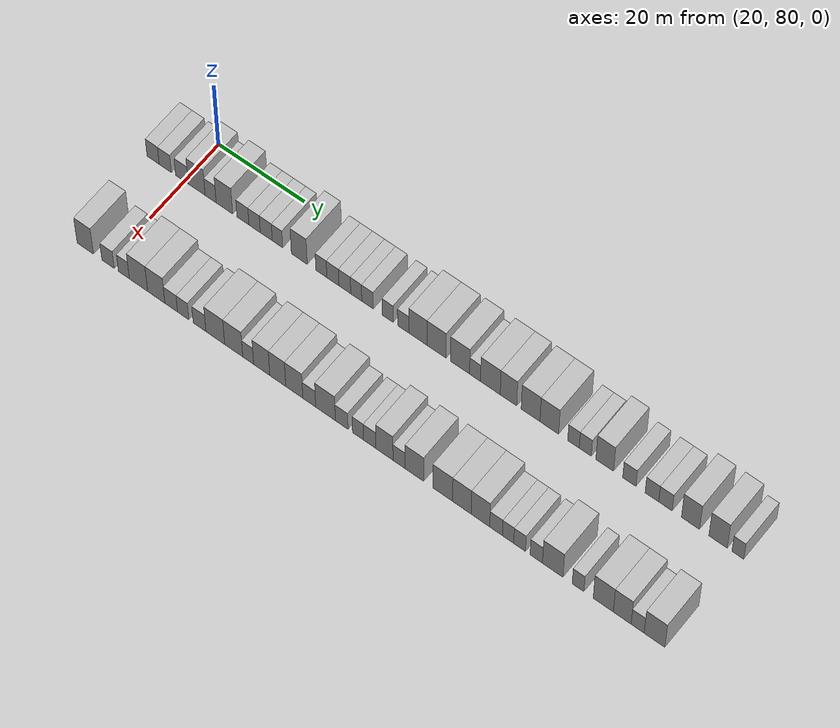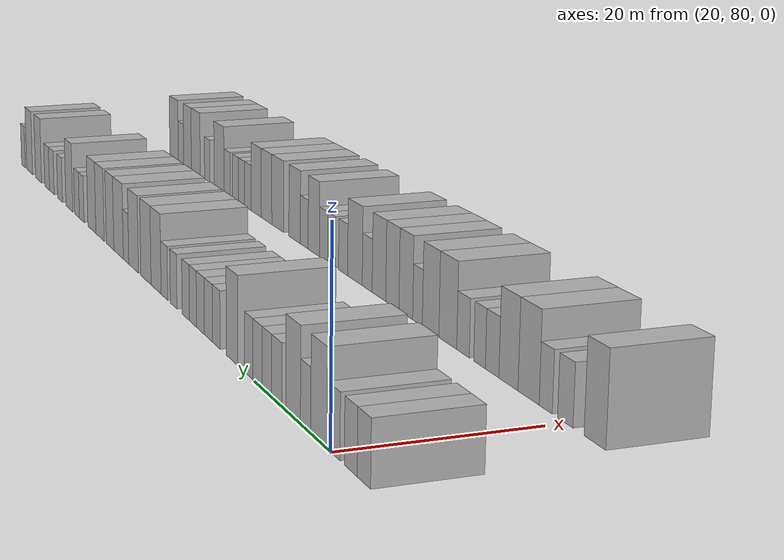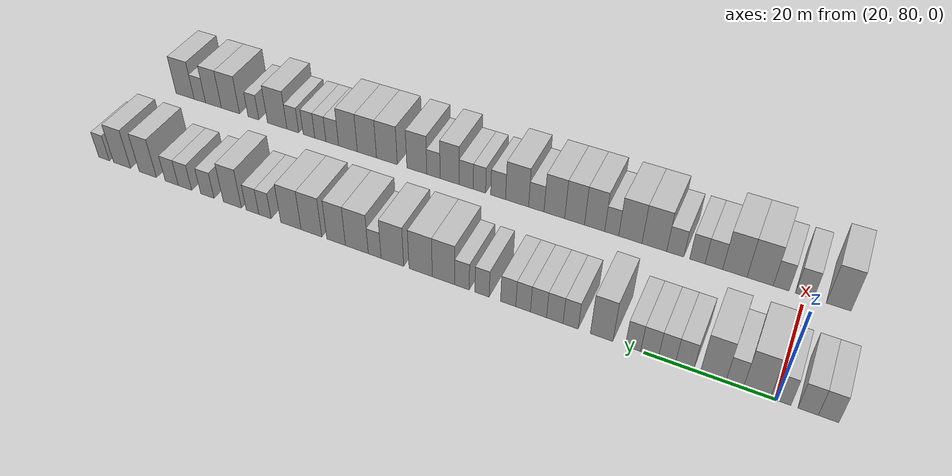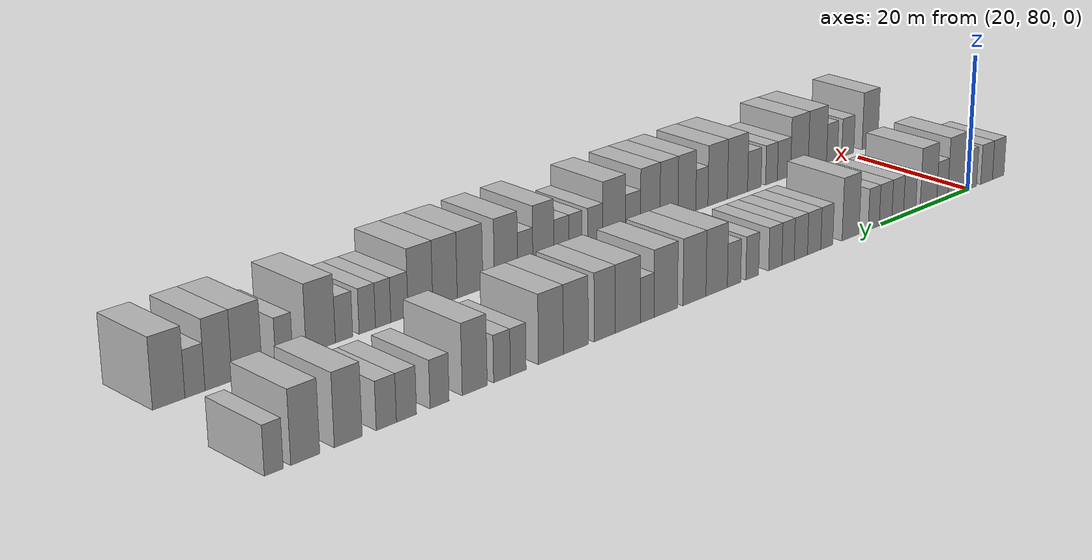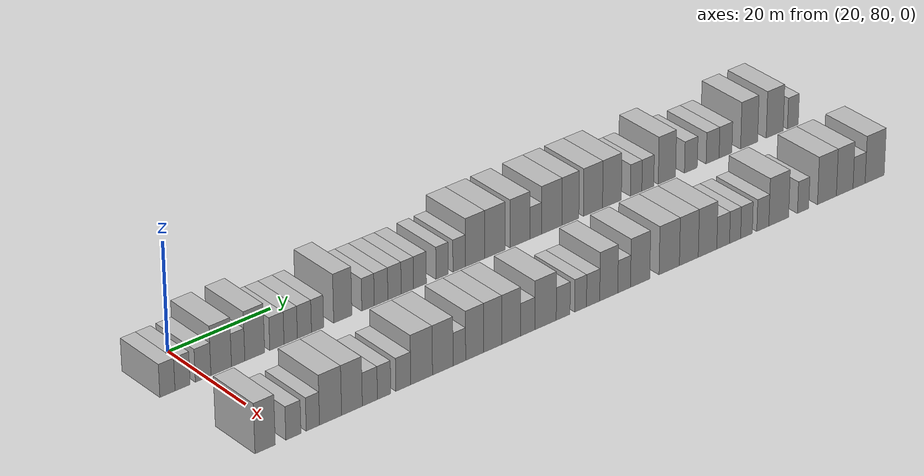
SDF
<sdf version="1.6">
 <world name="default">
  <model name="building_71">
   <static>1</static>
   <pose>25.0000 72.5571 0 0.000000 0.000000 0.000000</pose>
   <link name="link">
    <pose>0 0 3.00 0 0 0</pose>
    <collision name="collision"><geometry><box><size>10.0000 2.8815 6.0000</size></box></geometry></collision>
    <visual name="visual">
     <cast_shadows>0</cast_shadows>
     <geometry><box><size>10.0000 2.8815 6.0000</size></box></geometry>
     <material>
      <script>
       <uri>model://HANNAS_wall/materials/scripts</uri>
       <uri>model://HANNAS_wall/materials/textures</uri>
       <name>vrc/HANNAS_wall</name>
      </script>
     </material>
    </visual>
   </link>
  </model>
  <model name="building_72">
   <static>1</static>
   <pose>25.0000 75.4429 0 0.000000 0.000000 0.000000</pose>
   <link name="link">
    <pose>0 0 3.00 0 0 0</pose>
    <collision name="collision"><geometry><box><size>10.0000 2.8902 6.0000</size></box></geometry></collision>
    <visual name="visual">
     <cast_shadows>0</cast_shadows>
     <geometry><box><size>10.0000 2.8902 6.0000</size></box></geometry>
     <material>
      <script>
       <uri>model://HANNAS_wall/materials/scripts</uri>
       <uri>model://HANNAS_wall/materials/textures</uri>
       <name>vrc/HANNAS_wall</name>
      </script>
     </material>
    </visual>
   </link>
  </model>
  <model name="building_73">
   <static>1</static>
   <pose>25.0000 79.3870 0 0.000000 0.000000 0.000000</pose>
   <link name="link">
    <pose>0 0 3.00 0 0 0</pose>
    <collision name="collision"><geometry><box><size>10.0000 2.9979 6.0000</size></box></geometry></collision>
    <visual name="visual">
     <cast_shadows>0</cast_shadows>
     <geometry><box><size>10.0000 2.9979 6.0000</size></box></geometry>
     <material>
      <script>
       <uri>model://HANNAS_wall/materials/scripts</uri>
       <uri>model://HANNAS_wall/materials/textures</uri>
       <name>vrc/HANNAS_wall</name>
      </script>
     </material>
    </visual>
   </link>
  </model>
  <model name="building_74">
   <static>1</static>
   <pose>25.0000 82.8758 0 0.000000 0.000000 0.000000</pose>
   <link name="link">
    <pose>0 0 4.50 0 0 0</pose>
    <collision name="collision"><geometry><box><size>10.0000 3.9798 9.0000</size></box></geometry></collision>
    <visual name="visual">
     <cast_shadows>0</cast_shadows>
     <geometry><box><size>10.0000 3.9798 9.0000</size></box></geometry>
     <material>
      <script>
       <uri>model://HANNAS_wall/materials/scripts</uri>
       <uri>model://HANNAS_wall/materials/textures</uri>
       <name>vrc/HANNAS_wall</name>
      </script>
     </material>
    </visual>
   </link>
  </model>
  <model name="building_75">
   <static>1</static>
   <pose>25.0000 86.1641 0 0.000000 0.000000 0.000000</pose>
   <link name="link">
    <pose>0 0 3.00 0 0 0</pose>
    <collision name="collision"><geometry><box><size>10.0000 2.5969 6.0000</size></box></geometry></collision>
    <visual name="visual">
     <cast_shadows>0</cast_shadows>
     <geometry><box><size>10.0000 2.5969 6.0000</size></box></geometry>
     <material>
      <script>
       <uri>model://HANNAS_wall/materials/scripts</uri>
       <uri>model://HANNAS_wall/materials/textures</uri>
       <name>vrc/HANNAS_wall</name>
      </script>
     </material>
    </visual>
   </link>
  </model>
  <model name="building_76">
   <static>1</static>
   <pose>25.0000 89.3958 0 0.000000 0.000000 0.000000</pose>
   <link name="link">
    <pose>0 0 4.50 0 0 0</pose>
    <collision name="collision"><geometry><box><size>10.0000 3.8663 9.0000</size></box></geometry></collision>
    <visual name="visual">
     <cast_shadows>0</cast_shadows>
     <geometry><box><size>10.0000 3.8663 9.0000</size></box></geometry>
     <material>
      <script>
       <uri>model://HANNAS_wall/materials/scripts</uri>
       <uri>model://HANNAS_wall/materials/textures</uri>
       <name>vrc/HANNAS_wall</name>
      </script>
     </material>
    </visual>
   </link>
  </model>
  <model name="building_77">
   <static>1</static>
   <pose>25.0000 93.7324 0 0.000000 0.000000 0.000000</pose>
   <link name="link">
    <pose>0 0 3.00 0 0 0</pose>
    <collision name="collision"><geometry><box><size>10.0000 2.8068 6.0000</size></box></geometry></collision>
    <visual name="visual">
     <cast_shadows>0</cast_shadows>
     <geometry><box><size>10.0000 2.8068 6.0000</size></box></geometry>
     <material>
      <script>
       <uri>model://HANNAS_wall/materials/scripts</uri>
       <uri>model://HANNAS_wall/materials/textures</uri>
       <name>vrc/HANNAS_wall</name>
      </script>
     </material>
    </visual>
   </link>
  </model>
  <model name="building_78">
   <static>1</static>
   <pose>25.0000 96.4545 0 0.000000 0.000000 0.000000</pose>
   <link name="link">
    <pose>0 0 3.00 0 0 0</pose>
    <collision name="collision"><geometry><box><size>10.0000 2.6375 6.0000</size></box></geometry></collision>
    <visual name="visual">
     <cast_shadows>0</cast_shadows>
     <geometry><box><size>10.0000 2.6375 6.0000</size></box></geometry>
     <material>
      <script>
       <uri>model://HANNAS_wall/materials/scripts</uri>
       <uri>model://HANNAS_wall/materials/textures</uri>
       <name>vrc/HANNAS_wall</name>
      </script>
     </material>
    </visual>
   </link>
  </model>
  <model name="building_79">
   <static>1</static>
   <pose>25.0000 99.1739 0 0.000000 0.000000 0.000000</pose>
   <link name="link">
    <pose>0 0 3.00 0 0 0</pose>
    <collision name="collision"><geometry><box><size>10.0000 2.8012 6.0000</size></box></geometry></collision>
    <visual name="visual">
     <cast_shadows>0</cast_shadows>
     <geometry><box><size>10.0000 2.8012 6.0000</size></box></geometry>
     <material>
      <script>
       <uri>model://HANNAS_wall/materials/scripts</uri>
       <uri>model://HANNAS_wall/materials/textures</uri>
       <name>vrc/HANNAS_wall</name>
      </script>
     </material>
    </visual>
   </link>
  </model>
  <model name="building_80">
   <static>1</static>
   <pose>25.0000 101.7898 0 0.000000 0.000000 0.000000</pose>
   <link name="link">
    <pose>0 0 3.00 0 0 0</pose>
    <collision name="collision"><geometry><box><size>10.0000 2.4306 6.0000</size></box></geometry></collision>
    <visual name="visual">
     <cast_shadows>0</cast_shadows>
     <geometry><box><size>10.0000 2.4306 6.0000</size></box></geometry>
     <material>
      <script>
       <uri>model://HANNAS_wall/materials/scripts</uri>
       <uri>model://HANNAS_wall/materials/textures</uri>
       <name>vrc/HANNAS_wall</name>
      </script>
     </material>
    </visual>
   </link>
  </model>
  <model name="building_81">
   <static>1</static>
   <pose>25.0000 106.8358 0 0.000000 0.000000 0.000000</pose>
   <link name="link">
    <pose>0 0 4.50 0 0 0</pose>
    <collision name="collision"><geometry><box><size>10.0000 3.6615 9.0000</size></box></geometry></collision>
    <visual name="visual">
     <cast_shadows>0</cast_shadows>
     <geometry><box><size>10.0000 3.6615 9.0000</size></box></geometry>
     <material>
      <script>
       <uri>model://HANNAS_wall/materials/scripts</uri>
       <uri>model://HANNAS_wall/materials/textures</uri>
       <name>vrc/HANNAS_wall</name>
      </script>
     </material>
    </visual>
   </link>
  </model>
  <model name="building_82">
   <static>1</static>
   <pose>25.0000 111.9291 0 0.000000 0.000000 0.000000</pose>
   <link name="link">
    <pose>0 0 3.00 0 0 0</pose>
    <collision name="collision"><geometry><box><size>10.0000 2.5251 6.0000</size></box></geometry></collision>
    <visual name="visual">
     <cast_shadows>0</cast_shadows>
     <geometry><box><size>10.0000 2.5251 6.0000</size></box></geometry>
     <material>
      <script>
       <uri>model://HANNAS_wall/materials/scripts</uri>
       <uri>model://HANNAS_wall/materials/textures</uri>
       <name>vrc/HANNAS_wall</name>
      </script>
     </material>
    </visual>
   </link>
  </model>
  <model name="building_83">
   <static>1</static>
   <pose>25.0000 114.5763 0 0.000000 0.000000 0.000000</pose>
   <link name="link">
    <pose>0 0 3.00 0 0 0</pose>
    <collision name="collision"><geometry><box><size>10.0000 2.7694 6.0000</size></box></geometry></collision>
    <visual name="visual">
     <cast_shadows>0</cast_shadows>
     <geometry><box><size>10.0000 2.7694 6.0000</size></box></geometry>
     <material>
      <script>
       <uri>model://HANNAS_wall/materials/scripts</uri>
       <uri>model://HANNAS_wall/materials/textures</uri>
       <name>vrc/HANNAS_wall</name>
      </script>
     </material>
    </visual>
   </link>
  </model>
  <model name="building_84">
   <static>1</static>
   <pose>25.0000 117.3255 0 0.000000 0.000000 0.000000</pose>
   <link name="link">
    <pose>0 0 3.00 0 0 0</pose>
    <collision name="collision"><geometry><box><size>10.0000 2.7290 6.0000</size></box></geometry></collision>
    <visual name="visual">
     <cast_shadows>0</cast_shadows>
     <geometry><box><size>10.0000 2.7290 6.0000</size></box></geometry>
     <material>
      <script>
       <uri>model://HANNAS_wall/materials/scripts</uri>
       <uri>model://HANNAS_wall/materials/textures</uri>
       <name>vrc/HANNAS_wall</name>
      </script>
     </material>
    </visual>
   </link>
  </model>
  <model name="building_85">
   <static>1</static>
   <pose>25.0000 119.9507 0 0.000000 0.000000 0.000000</pose>
   <link name="link">
    <pose>0 0 3.00 0 0 0</pose>
    <collision name="collision"><geometry><box><size>10.0000 2.5216 6.0000</size></box></geometry></collision>
    <visual name="visual">
     <cast_shadows>0</cast_shadows>
     <geometry><box><size>10.0000 2.5216 6.0000</size></box></geometry>
     <material>
      <script>
       <uri>model://HANNAS_wall/materials/scripts</uri>
       <uri>model://HANNAS_wall/materials/textures</uri>
       <name>vrc/HANNAS_wall</name>
      </script>
     </material>
    </visual>
   </link>
  </model>
  <model name="building_86">
   <static>1</static>
   <pose>25.0000 122.5331 0 0.000000 0.000000 0.000000</pose>
   <link name="link">
    <pose>0 0 3.00 0 0 0</pose>
    <collision name="collision"><geometry><box><size>10.0000 2.6431 6.0000</size></box></geometry></collision>
    <visual name="visual">
     <cast_shadows>0</cast_shadows>
     <geometry><box><size>10.0000 2.6431 6.0000</size></box></geometry>
     <material>
      <script>
       <uri>model://HANNAS_wall/materials/scripts</uri>
       <uri>model://HANNAS_wall/materials/textures</uri>
       <name>vrc/HANNAS_wall</name>
      </script>
     </material>
    </visual>
   </link>
  </model>
  <model name="building_87">
   <static>1</static>
   <pose>25.0000 127.1151 0 0.000000 0.000000 0.000000</pose>
   <link name="link">
    <pose>0 0 3.00 0 0 0</pose>
    <collision name="collision"><geometry><box><size>10.0000 2.5209 6.0000</size></box></geometry></collision>
    <visual name="visual">
     <cast_shadows>0</cast_shadows>
     <geometry><box><size>10.0000 2.5209 6.0000</size></box></geometry>
     <material>
      <script>
       <uri>model://HANNAS_wall/materials/scripts</uri>
       <uri>model://HANNAS_wall/materials/textures</uri>
       <name>vrc/HANNAS_wall</name>
      </script>
     </material>
    </visual>
   </link>
  </model>
  <model name="building_88">
   <static>1</static>
   <pose>25.0000 130.6685 0 0.000000 0.000000 0.000000</pose>
   <link name="link">
    <pose>0 0 3.00 0 0 0</pose>
    <collision name="collision"><geometry><box><size>10.0000 2.5859 6.0000</size></box></geometry></collision>
    <visual name="visual">
     <cast_shadows>0</cast_shadows>
     <geometry><box><size>10.0000 2.5859 6.0000</size></box></geometry>
     <material>
      <script>
       <uri>model://HANNAS_wall/materials/scripts</uri>
       <uri>model://HANNAS_wall/materials/textures</uri>
       <name>vrc/HANNAS_wall</name>
      </script>
     </material>
    </visual>
   </link>
  </model>
  <model name="building_89">
   <static>1</static>
   <pose>25.0000 134.0063 0 0.000000 0.000000 0.000000</pose>
   <link name="link">
    <pose>0 0 4.50 0 0 0</pose>
    <collision name="collision"><geometry><box><size>10.0000 4.0898 9.0000</size></box></geometry></collision>
    <visual name="visual">
     <cast_shadows>0</cast_shadows>
     <geometry><box><size>10.0000 4.0898 9.0000</size></box></geometry>
     <material>
      <script>
       <uri>model://HANNAS_wall/materials/scripts</uri>
       <uri>model://HANNAS_wall/materials/textures</uri>
       <name>vrc/HANNAS_wall</name>
      </script>
     </material>
    </visual>
   </link>
  </model>
  <model name="building_90">
   <static>1</static>
   <pose>25.0000 138.2001 0 0.000000 0.000000 0.000000</pose>
   <link name="link">
    <pose>0 0 4.50 0 0 0</pose>
    <collision name="collision"><geometry><box><size>10.0000 4.2977 9.0000</size></box></geometry></collision>
    <visual name="visual">
     <cast_shadows>0</cast_shadows>
     <geometry><box><size>10.0000 4.2977 9.0000</size></box></geometry>
     <material>
      <script>
       <uri>model://HANNAS_wall/materials/scripts</uri>
       <uri>model://HANNAS_wall/materials/textures</uri>
       <name>vrc/HANNAS_wall</name>
      </script>
     </material>
    </visual>
   </link>
  </model>
  <model name="building_91">
   <static>1</static>
   <pose>25.0000 143.4867 0 0.000000 0.000000 0.000000</pose>
   <link name="link">
    <pose>0 0 4.50 0 0 0</pose>
    <collision name="collision"><geometry><box><size>10.0000 4.2757 9.0000</size></box></geometry></collision>
    <visual name="visual">
     <cast_shadows>0</cast_shadows>
     <geometry><box><size>10.0000 4.2757 9.0000</size></box></geometry>
     <material>
      <script>
       <uri>model://HANNAS_wall/materials/scripts</uri>
       <uri>model://HANNAS_wall/materials/textures</uri>
       <name>vrc/HANNAS_wall</name>
      </script>
     </material>
    </visual>
   </link>
  </model>
  <model name="building_92">
   <static>1</static>
   <pose>25.0000 146.8455 0 0.000000 0.000000 0.000000</pose>
   <link name="link">
    <pose>0 0 3.00 0 0 0</pose>
    <collision name="collision"><geometry><box><size>10.0000 2.4419 6.0000</size></box></geometry></collision>
    <visual name="visual">
     <cast_shadows>0</cast_shadows>
     <geometry><box><size>10.0000 2.4419 6.0000</size></box></geometry>
     <material>
      <script>
       <uri>model://HANNAS_wall/materials/scripts</uri>
       <uri>model://HANNAS_wall/materials/textures</uri>
       <name>vrc/HANNAS_wall</name>
      </script>
     </material>
    </visual>
   </link>
  </model>
  <model name="building_93">
   <static>1</static>
   <pose>25.0000 150.2772 0 0.000000 0.000000 0.000000</pose>
   <link name="link">
    <pose>0 0 4.50 0 0 0</pose>
    <collision name="collision"><geometry><box><size>10.0000 4.4215 9.0000</size></box></geometry></collision>
    <visual name="visual">
     <cast_shadows>0</cast_shadows>
     <geometry><box><size>10.0000 4.4215 9.0000</size></box></geometry>
     <material>
      <script>
       <uri>model://HANNAS_wall/materials/scripts</uri>
       <uri>model://HANNAS_wall/materials/textures</uri>
       <name>vrc/HANNAS_wall</name>
      </script>
     </material>
    </visual>
   </link>
  </model>
  <model name="building_94">
   <static>1</static>
   <pose>25.0000 154.3212 0 0.000000 0.000000 0.000000</pose>
   <link name="link">
    <pose>0 0 4.50 0 0 0</pose>
    <collision name="collision"><geometry><box><size>10.0000 3.6666 9.0000</size></box></geometry></collision>
    <visual name="visual">
     <cast_shadows>0</cast_shadows>
     <geometry><box><size>10.0000 3.6666 9.0000</size></box></geometry>
     <material>
      <script>
       <uri>model://HANNAS_wall/materials/scripts</uri>
       <uri>model://HANNAS_wall/materials/textures</uri>
       <name>vrc/HANNAS_wall</name>
      </script>
     </material>
    </visual>
   </link>
  </model>
  <model name="building_95">
   <static>1</static>
   <pose>25.0000 159.2352 0 0.000000 0.000000 0.000000</pose>
   <link name="link">
    <pose>0 0 4.50 0 0 0</pose>
    <collision name="collision"><geometry><box><size>10.0000 4.1613 9.0000</size></box></geometry></collision>
    <visual name="visual">
     <cast_shadows>0</cast_shadows>
     <geometry><box><size>10.0000 4.1613 9.0000</size></box></geometry>
     <material>
      <script>
       <uri>model://HANNAS_wall/materials/scripts</uri>
       <uri>model://HANNAS_wall/materials/textures</uri>
       <name>vrc/HANNAS_wall</name>
      </script>
     </material>
    </visual>
   </link>
  </model>
  <model name="building_96">
   <static>1</static>
   <pose>25.0000 163.3816 0 0.000000 0.000000 0.000000</pose>
   <link name="link">
    <pose>0 0 4.50 0 0 0</pose>
    <collision name="collision"><geometry><box><size>10.0000 4.1316 9.0000</size></box></geometry></collision>
    <visual name="visual">
     <cast_shadows>0</cast_shadows>
     <geometry><box><size>10.0000 4.1316 9.0000</size></box></geometry>
     <material>
      <script>
       <uri>model://HANNAS_wall/materials/scripts</uri>
       <uri>model://HANNAS_wall/materials/textures</uri>
       <name>vrc/HANNAS_wall</name>
      </script>
     </material>
    </visual>
   </link>
  </model>
  <model name="building_97">
   <static>1</static>
   <pose>25.0000 168.7137 0 0.000000 0.000000 0.000000</pose>
   <link name="link">
    <pose>0 0 3.00 0 0 0</pose>
    <collision name="collision"><geometry><box><size>10.0000 2.5326 6.0000</size></box></geometry></collision>
    <visual name="visual">
     <cast_shadows>0</cast_shadows>
     <geometry><box><size>10.0000 2.5326 6.0000</size></box></geometry>
     <material>
      <script>
       <uri>model://HANNAS_wall/materials/scripts</uri>
       <uri>model://HANNAS_wall/materials/textures</uri>
       <name>vrc/HANNAS_wall</name>
      </script>
     </material>
    </visual>
   </link>
  </model>
  <model name="building_98">
   <static>1</static>
   <pose>25.0000 171.3043 0 0.000000 0.000000 0.000000</pose>
   <link name="link">
    <pose>0 0 3.00 0 0 0</pose>
    <collision name="collision"><geometry><box><size>10.0000 2.6486 6.0000</size></box></geometry></collision>
    <visual name="visual">
     <cast_shadows>0</cast_shadows>
     <geometry><box><size>10.0000 2.6486 6.0000</size></box></geometry>
     <material>
      <script>
       <uri>model://HANNAS_wall/materials/scripts</uri>
       <uri>model://HANNAS_wall/materials/textures</uri>
       <name>vrc/HANNAS_wall</name>
      </script>
     </material>
    </visual>
   </link>
  </model>
  <model name="building_99">
   <static>1</static>
   <pose>25.0000 175.5673 0 0.000000 0.000000 0.000000</pose>
   <link name="link">
    <pose>0 0 4.50 0 0 0</pose>
    <collision name="collision"><geometry><box><size>10.0000 3.8774 9.0000</size></box></geometry></collision>
    <visual name="visual">
     <cast_shadows>0</cast_shadows>
     <geometry><box><size>10.0000 3.8774 9.0000</size></box></geometry>
     <material>
      <script>
       <uri>model://HANNAS_wall/materials/scripts</uri>
       <uri>model://HANNAS_wall/materials/textures</uri>
       <name>vrc/HANNAS_wall</name>
      </script>
     </material>
    </visual>
   </link>
  </model>
  <model name="building_100">
   <static>1</static>
   <pose>25.0000 180.9476 0 0.000000 0.000000 0.000000</pose>
   <link name="link">
    <pose>0 0 3.00 0 0 0</pose>
    <collision name="collision"><geometry><box><size>10.0000 2.8832 6.0000</size></box></geometry></collision>
    <visual name="visual">
     <cast_shadows>0</cast_shadows>
     <geometry><box><size>10.0000 2.8832 6.0000</size></box></geometry>
     <material>
      <script>
       <uri>model://HANNAS_wall/materials/scripts</uri>
       <uri>model://HANNAS_wall/materials/textures</uri>
       <name>vrc/HANNAS_wall</name>
      </script>
     </material>
    </visual>
   </link>
  </model>
  <model name="building_101">
   <static>1</static>
   <pose>25.0000 185.8654 0 0.000000 0.000000 0.000000</pose>
   <link name="link">
    <pose>0 0 3.00 0 0 0</pose>
    <collision name="collision"><geometry><box><size>10.0000 2.9524 6.0000</size></box></geometry></collision>
    <visual name="visual">
     <cast_shadows>0</cast_shadows>
     <geometry><box><size>10.0000 2.9524 6.0000</size></box></geometry>
     <material>
      <script>
       <uri>model://HANNAS_wall/materials/scripts</uri>
       <uri>model://HANNAS_wall/materials/textures</uri>
       <name>vrc/HANNAS_wall</name>
      </script>
     </material>
    </visual>
   </link>
  </model>
  <model name="building_102">
   <static>1</static>
   <pose>25.0000 188.8003 0 0.000000 0.000000 0.000000</pose>
   <link name="link">
    <pose>0 0 3.00 0 0 0</pose>
    <collision name="collision"><geometry><box><size>10.0000 2.9174 6.0000</size></box></geometry></collision>
    <visual name="visual">
     <cast_shadows>0</cast_shadows>
     <geometry><box><size>10.0000 2.9174 6.0000</size></box></geometry>
     <material>
      <script>
       <uri>model://HANNAS_wall/materials/scripts</uri>
       <uri>model://HANNAS_wall/materials/textures</uri>
       <name>vrc/HANNAS_wall</name>
      </script>
     </material>
    </visual>
   </link>
  </model>
  <model name="building_103">
   <static>1</static>
   <pose>25.0000 194.2139 0 0.000000 0.000000 0.000000</pose>
   <link name="link">
    <pose>0 0 4.50 0 0 0</pose>
    <collision name="collision"><geometry><box><size>10.0000 3.9099 9.0000</size></box></geometry></collision>
    <visual name="visual">
     <cast_shadows>0</cast_shadows>
     <geometry><box><size>10.0000 3.9099 9.0000</size></box></geometry>
     <material>
      <script>
       <uri>model://HANNAS_wall/materials/scripts</uri>
       <uri>model://HANNAS_wall/materials/textures</uri>
       <name>vrc/HANNAS_wall</name>
      </script>
     </material>
    </visual>
   </link>
  </model>
  <model name="building_104">
   <static>1</static>
   <pose>25.0000 200.1415 0 0.000000 0.000000 0.000000</pose>
   <link name="link">
    <pose>0 0 4.50 0 0 0</pose>
    <collision name="collision"><geometry><box><size>10.0000 3.9453 9.0000</size></box></geometry></collision>
    <visual name="visual">
     <cast_shadows>0</cast_shadows>
     <geometry><box><size>10.0000 3.9453 9.0000</size></box></geometry>
     <material>
      <script>
       <uri>model://HANNAS_wall/materials/scripts</uri>
       <uri>model://HANNAS_wall/materials/textures</uri>
       <name>vrc/HANNAS_wall</name>
      </script>
     </material>
    </visual>
   </link>
  </model>
  <model name="building_105">
   <static>1</static>
   <pose>25.0000 204.3710 0 0.000000 0.000000 0.000000</pose>
   <link name="link">
    <pose>0 0 3.00 0 0 0</pose>
    <collision name="collision"><geometry><box><size>10.0000 2.5138 6.0000</size></box></geometry></collision>
    <visual name="visual">
     <cast_shadows>0</cast_shadows>
     <geometry><box><size>10.0000 2.5138 6.0000</size></box></geometry>
     <material>
      <script>
       <uri>model://HANNAS_wall/materials/scripts</uri>
       <uri>model://HANNAS_wall/materials/textures</uri>
       <name>vrc/HANNAS_wall</name>
      </script>
     </material>
    </visual>
   </link>
  </model>
  <model name="building_174">
   <static>1</static>
   <pose>47.0000 74.7306 0 0.000000 0.000000 0.000000</pose>
   <link name="link">
    <pose>0 0 4.50 0 0 0</pose>
    <collision name="collision"><geometry><box><size>10.0000 3.8493 9.0000</size></box></geometry></collision>
    <visual name="visual">
     <cast_shadows>0</cast_shadows>
     <geometry><box><size>10.0000 3.8493 9.0000</size></box></geometry>
     <material>
      <script>
       <uri>model://HANNAS_wall/materials/scripts</uri>
       <uri>model://HANNAS_wall/materials/textures</uri>
       <name>vrc/HANNAS_wall</name>
      </script>
     </material>
    </visual>
   </link>
  </model>
  <model name="building_175">
   <static>1</static>
   <pose>47.0000 80.1007 0 0.000000 0.000000 0.000000</pose>
   <link name="link">
    <pose>0 0 3.00 0 0 0</pose>
    <collision name="collision"><geometry><box><size>10.0000 2.8911 6.0000</size></box></geometry></collision>
    <visual name="visual">
     <cast_shadows>0</cast_shadows>
     <geometry><box><size>10.0000 2.8911 6.0000</size></box></geometry>
     <material>
      <script>
       <uri>model://HANNAS_wall/materials/scripts</uri>
       <uri>model://HANNAS_wall/materials/textures</uri>
       <name>vrc/HANNAS_wall</name>
      </script>
     </material>
    </visual>
   </link>
  </model>
  <model name="building_176">
   <static>1</static>
   <pose>47.0000 83.8261 0 0.000000 0.000000 0.000000</pose>
   <link name="link">
    <pose>0 0 3.00 0 0 0</pose>
    <collision name="collision"><geometry><box><size>10.0000 2.5595 6.0000</size></box></geometry></collision>
    <visual name="visual">
     <cast_shadows>0</cast_shadows>
     <geometry><box><size>10.0000 2.5595 6.0000</size></box></geometry>
     <material>
      <script>
       <uri>model://HANNAS_wall/materials/scripts</uri>
       <uri>model://HANNAS_wall/materials/textures</uri>
       <name>vrc/HANNAS_wall</name>
      </script>
     </material>
    </visual>
   </link>
  </model>
  <model name="building_177">
   <static>1</static>
   <pose>47.0000 87.2421 0 0.000000 0.000000 0.000000</pose>
   <link name="link">
    <pose>0 0 4.50 0 0 0</pose>
    <collision name="collision"><geometry><box><size>10.0000 4.2725 9.0000</size></box></geometry></collision>
    <visual name="visual">
     <cast_shadows>0</cast_shadows>
     <geometry><box><size>10.0000 4.2725 9.0000</size></box></geometry>
     <material>
      <script>
       <uri>model://HANNAS_wall/materials/scripts</uri>
       <uri>model://HANNAS_wall/materials/textures</uri>
       <name>vrc/HANNAS_wall</name>
      </script>
     </material>
    </visual>
   </link>
  </model>
  <model name="building_178">
   <static>1</static>
   <pose>47.0000 91.3925 0 0.000000 0.000000 0.000000</pose>
   <link name="link">
    <pose>0 0 4.50 0 0 0</pose>
    <collision name="collision"><geometry><box><size>10.0000 4.0284 9.0000</size></box></geometry></collision>
    <visual name="visual">
     <cast_shadows>0</cast_shadows>
     <geometry><box><size>10.0000 4.0284 9.0000</size></box></geometry>
     <material>
      <script>
       <uri>model://HANNAS_wall/materials/scripts</uri>
       <uri>model://HANNAS_wall/materials/textures</uri>
       <name>vrc/HANNAS_wall</name>
      </script>
     </material>
    </visual>
   </link>
  </model>
  <model name="building_179">
   <static>1</static>
   <pose>47.0000 94.8837 0 0.000000 0.000000 0.000000</pose>
   <link name="link">
    <pose>0 0 3.00 0 0 0</pose>
    <collision name="collision"><geometry><box><size>10.0000 2.9539 6.0000</size></box></geometry></collision>
    <visual name="visual">
     <cast_shadows>0</cast_shadows>
     <geometry><box><size>10.0000 2.9539 6.0000</size></box></geometry>
     <material>
      <script>
       <uri>model://HANNAS_wall/materials/scripts</uri>
       <uri>model://HANNAS_wall/materials/textures</uri>
       <name>vrc/HANNAS_wall</name>
      </script>
     </material>
    </visual>
   </link>
  </model>
  <model name="building_180">
   <static>1</static>
   <pose>47.0000 97.6708 0 0.000000 0.000000 0.000000</pose>
   <link name="link">
    <pose>0 0 3.00 0 0 0</pose>
    <collision name="collision"><geometry><box><size>10.0000 2.6204 6.0000</size></box></geometry></collision>
    <visual name="visual">
     <cast_shadows>0</cast_shadows>
     <geometry><box><size>10.0000 2.6204 6.0000</size></box></geometry>
     <material>
      <script>
       <uri>model://HANNAS_wall/materials/scripts</uri>
       <uri>model://HANNAS_wall/materials/textures</uri>
       <name>vrc/HANNAS_wall</name>
      </script>
     </material>
    </visual>
   </link>
  </model>
  <model name="building_181">
   <static>1</static>
   <pose>47.0000 101.4555 0 0.000000 0.000000 0.000000</pose>
   <link name="link">
    <pose>0 0 3.00 0 0 0</pose>
    <collision name="collision"><geometry><box><size>10.0000 2.9488 6.0000</size></box></geometry></collision>
    <visual name="visual">
     <cast_shadows>0</cast_shadows>
     <geometry><box><size>10.0000 2.9488 6.0000</size></box></geometry>
     <material>
      <script>
       <uri>model://HANNAS_wall/materials/scripts</uri>
       <uri>model://HANNAS_wall/materials/textures</uri>
       <name>vrc/HANNAS_wall</name>
      </script>
     </material>
    </visual>
   </link>
  </model>
  <model name="building_182">
   <static>1</static>
   <pose>47.0000 105.0922 0 0.000000 0.000000 0.000000</pose>
   <link name="link">
    <pose>0 0 4.50 0 0 0</pose>
    <collision name="collision"><geometry><box><size>10.0000 4.3245 9.0000</size></box></geometry></collision>
    <visual name="visual">
     <cast_shadows>0</cast_shadows>
     <geometry><box><size>10.0000 4.3245 9.0000</size></box></geometry>
     <material>
      <script>
       <uri>model://HANNAS_wall/materials/scripts</uri>
       <uri>model://HANNAS_wall/materials/textures</uri>
       <name>vrc/HANNAS_wall</name>
      </script>
     </material>
    </visual>
   </link>
  </model>
  <model name="building_183">
   <static>1</static>
   <pose>47.0000 109.3235 0 0.000000 0.000000 0.000000</pose>
   <link name="link">
    <pose>0 0 4.50 0 0 0</pose>
    <collision name="collision"><geometry><box><size>10.0000 4.1381 9.0000</size></box></geometry></collision>
    <visual name="visual">
     <cast_shadows>0</cast_shadows>
     <geometry><box><size>10.0000 4.1381 9.0000</size></box></geometry>
     <material>
      <script>
       <uri>model://HANNAS_wall/materials/scripts</uri>
       <uri>model://HANNAS_wall/materials/textures</uri>
       <name>vrc/HANNAS_wall</name>
      </script>
     </material>
    </visual>
   </link>
  </model>
  <model name="building_184">
   <static>1</static>
   <pose>47.0000 112.6541 0 0.000000 0.000000 0.000000</pose>
   <link name="link">
    <pose>0 0 3.00 0 0 0</pose>
    <collision name="collision"><geometry><box><size>10.0000 2.5231 6.0000</size></box></geometry></collision>
    <visual name="visual">
     <cast_shadows>0</cast_shadows>
     <geometry><box><size>10.0000 2.5231 6.0000</size></box></geometry>
     <material>
      <script>
       <uri>model://HANNAS_wall/materials/scripts</uri>
       <uri>model://HANNAS_wall/materials/textures</uri>
       <name>vrc/HANNAS_wall</name>
      </script>
     </material>
    </visual>
   </link>
  </model>
  <model name="building_185">
   <static>1</static>
   <pose>47.0000 115.7520 0 0.000000 0.000000 0.000000</pose>
   <link name="link">
    <pose>0 0 4.50 0 0 0</pose>
    <collision name="collision"><geometry><box><size>10.0000 3.6728 9.0000</size></box></geometry></collision>
    <visual name="visual">
     <cast_shadows>0</cast_shadows>
     <geometry><box><size>10.0000 3.6728 9.0000</size></box></geometry>
     <material>
      <script>
       <uri>model://HANNAS_wall/materials/scripts</uri>
       <uri>model://HANNAS_wall/materials/textures</uri>
       <name>vrc/HANNAS_wall</name>
      </script>
     </material>
    </visual>
   </link>
  </model>
  <model name="building_186">
   <static>1</static>
   <pose>47.0000 119.4121 0 0.000000 0.000000 0.000000</pose>
   <link name="link">
    <pose>0 0 4.50 0 0 0</pose>
    <collision name="collision"><geometry><box><size>10.0000 3.6474 9.0000</size></box></geometry></collision>
    <visual name="visual">
     <cast_shadows>0</cast_shadows>
     <geometry><box><size>10.0000 3.6474 9.0000</size></box></geometry>
     <material>
      <script>
       <uri>model://HANNAS_wall/materials/scripts</uri>
       <uri>model://HANNAS_wall/materials/textures</uri>
       <name>vrc/HANNAS_wall</name>
      </script>
     </material>
    </visual>
   </link>
  </model>
  <model name="building_187">
   <static>1</static>
   <pose>47.0000 123.1741 0 0.000000 0.000000 0.000000</pose>
   <link name="link">
    <pose>0 0 4.50 0 0 0</pose>
    <collision name="collision"><geometry><box><size>10.0000 3.8766 9.0000</size></box></geometry></collision>
    <visual name="visual">
     <cast_shadows>0</cast_shadows>
     <geometry><box><size>10.0000 3.8766 9.0000</size></box></geometry>
     <material>
      <script>
       <uri>model://HANNAS_wall/materials/scripts</uri>
       <uri>model://HANNAS_wall/materials/textures</uri>
       <name>vrc/HANNAS_wall</name>
      </script>
     </material>
    </visual>
   </link>
  </model>
  <model name="building_188">
   <static>1</static>
   <pose>47.0000 126.5732 0 0.000000 0.000000 0.000000</pose>
   <link name="link">
    <pose>0 0 3.00 0 0 0</pose>
    <collision name="collision"><geometry><box><size>10.0000 2.9216 6.0000</size></box></geometry></collision>
    <visual name="visual">
     <cast_shadows>0</cast_shadows>
     <geometry><box><size>10.0000 2.9216 6.0000</size></box></geometry>
     <material>
      <script>
       <uri>model://HANNAS_wall/materials/scripts</uri>
       <uri>model://HANNAS_wall/materials/textures</uri>
       <name>vrc/HANNAS_wall</name>
      </script>
     </material>
    </visual>
   </link>
  </model>
  <model name="building_189">
   <static>1</static>
   <pose>47.0000 130.2532 0 0.000000 0.000000 0.000000</pose>
   <link name="link">
    <pose>0 0 4.50 0 0 0</pose>
    <collision name="collision"><geometry><box><size>10.0000 4.4385 9.0000</size></box></geometry></collision>
    <visual name="visual">
     <cast_shadows>0</cast_shadows>
     <geometry><box><size>10.0000 4.4385 9.0000</size></box></geometry>
     <material>
      <script>
       <uri>model://HANNAS_wall/materials/scripts</uri>
       <uri>model://HANNAS_wall/materials/textures</uri>
       <name>vrc/HANNAS_wall</name>
      </script>
     </material>
    </visual>
   </link>
  </model>
  <model name="building_190">
   <static>1</static>
   <pose>47.0000 133.9115 0 0.000000 0.000000 0.000000</pose>
   <link name="link">
    <pose>0 0 3.00 0 0 0</pose>
    <collision name="collision"><geometry><box><size>10.0000 2.8781 6.0000</size></box></geometry></collision>
    <visual name="visual">
     <cast_shadows>0</cast_shadows>
     <geometry><box><size>10.0000 2.8781 6.0000</size></box></geometry>
     <material>
      <script>
       <uri>model://HANNAS_wall/materials/scripts</uri>
       <uri>model://HANNAS_wall/materials/textures</uri>
       <name>vrc/HANNAS_wall</name>
      </script>
     </material>
    </visual>
   </link>
  </model>
  <model name="building_191">
   <static>1</static>
   <pose>47.0000 137.5790 0 0.000000 0.000000 0.000000</pose>
   <link name="link">
    <pose>0 0 3.00 0 0 0</pose>
    <collision name="collision"><geometry><box><size>10.0000 2.4567 6.0000</size></box></geometry></collision>
    <visual name="visual">
     <cast_shadows>0</cast_shadows>
     <geometry><box><size>10.0000 2.4567 6.0000</size></box></geometry>
     <material>
      <script>
       <uri>model://HANNAS_wall/materials/scripts</uri>
       <uri>model://HANNAS_wall/materials/textures</uri>
       <name>vrc/HANNAS_wall</name>
      </script>
     </material>
    </visual>
   </link>
  </model>
  <model name="building_192">
   <static>1</static>
   <pose>47.0000 140.2006 0 0.000000 0.000000 0.000000</pose>
   <link name="link">
    <pose>0 0 3.00 0 0 0</pose>
    <collision name="collision"><geometry><box><size>10.0000 2.7865 6.0000</size></box></geometry></collision>
    <visual name="visual">
     <cast_shadows>0</cast_shadows>
     <geometry><box><size>10.0000 2.7865 6.0000</size></box></geometry>
     <material>
      <script>
       <uri>model://HANNAS_wall/materials/scripts</uri>
       <uri>model://HANNAS_wall/materials/textures</uri>
       <name>vrc/HANNAS_wall</name>
      </script>
     </material>
    </visual>
   </link>
  </model>
  <model name="building_193">
   <static>1</static>
   <pose>47.0000 143.5077 0 0.000000 0.000000 0.000000</pose>
   <link name="link">
    <pose>0 0 4.50 0 0 0</pose>
    <collision name="collision"><geometry><box><size>10.0000 3.8277 9.0000</size></box></geometry></collision>
    <visual name="visual">
     <cast_shadows>0</cast_shadows>
     <geometry><box><size>10.0000 3.8277 9.0000</size></box></geometry>
     <material>
      <script>
       <uri>model://HANNAS_wall/materials/scripts</uri>
       <uri>model://HANNAS_wall/materials/textures</uri>
       <name>vrc/HANNAS_wall</name>
      </script>
     </material>
    </visual>
   </link>
  </model>
  <model name="building_194">
   <static>1</static>
   <pose>47.0000 146.7729 0 0.000000 0.000000 0.000000</pose>
   <link name="link">
    <pose>0 0 3.00 0 0 0</pose>
    <collision name="collision"><geometry><box><size>10.0000 2.7027 6.0000</size></box></geometry></collision>
    <visual name="visual">
     <cast_shadows>0</cast_shadows>
     <geometry><box><size>10.0000 2.7027 6.0000</size></box></geometry>
     <material>
      <script>
       <uri>model://HANNAS_wall/materials/scripts</uri>
       <uri>model://HANNAS_wall/materials/textures</uri>
       <name>vrc/HANNAS_wall</name>
      </script>
     </material>
    </visual>
   </link>
  </model>
  <model name="building_195">
   <static>1</static>
   <pose>47.0000 150.1848 0 0.000000 0.000000 0.000000</pose>
   <link name="link">
    <pose>0 0 4.50 0 0 0</pose>
    <collision name="collision"><geometry><box><size>10.0000 4.1210 9.0000</size></box></geometry></collision>
    <visual name="visual">
     <cast_shadows>0</cast_shadows>
     <geometry><box><size>10.0000 4.1210 9.0000</size></box></geometry>
     <material>
      <script>
       <uri>model://HANNAS_wall/materials/scripts</uri>
       <uri>model://HANNAS_wall/materials/textures</uri>
       <name>vrc/HANNAS_wall</name>
      </script>
     </material>
    </visual>
   </link>
  </model>
  <model name="building_196">
   <static>1</static>
   <pose>47.0000 156.4427 0 0.000000 0.000000 0.000000</pose>
   <link name="link">
    <pose>0 0 4.50 0 0 0</pose>
    <collision name="collision"><geometry><box><size>10.0000 4.3949 9.0000</size></box></geometry></collision>
    <visual name="visual">
     <cast_shadows>0</cast_shadows>
     <geometry><box><size>10.0000 4.3949 9.0000</size></box></geometry>
     <material>
      <script>
       <uri>model://HANNAS_wall/materials/scripts</uri>
       <uri>model://HANNAS_wall/materials/textures</uri>
       <name>vrc/HANNAS_wall</name>
      </script>
     </material>
    </visual>
   </link>
  </model>
  <model name="building_197">
   <static>1</static>
   <pose>47.0000 160.6928 0 0.000000 0.000000 0.000000</pose>
   <link name="link">
    <pose>0 0 4.50 0 0 0</pose>
    <collision name="collision"><geometry><box><size>10.0000 4.1051 9.0000</size></box></geometry></collision>
    <visual name="visual">
     <cast_shadows>0</cast_shadows>
     <geometry><box><size>10.0000 4.1051 9.0000</size></box></geometry>
     <material>
      <script>
       <uri>model://HANNAS_wall/materials/scripts</uri>
       <uri>model://HANNAS_wall/materials/textures</uri>
       <name>vrc/HANNAS_wall</name>
      </script>
     </material>
    </visual>
   </link>
  </model>
  <model name="building_198">
   <static>1</static>
   <pose>47.0000 164.7774 0 0.000000 0.000000 0.000000</pose>
   <link name="link">
    <pose>0 0 4.50 0 0 0</pose>
    <collision name="collision"><geometry><box><size>10.0000 4.0641 9.0000</size></box></geometry></collision>
    <visual name="visual">
     <cast_shadows>0</cast_shadows>
     <geometry><box><size>10.0000 4.0641 9.0000</size></box></geometry>
     <material>
      <script>
       <uri>model://HANNAS_wall/materials/scripts</uri>
       <uri>model://HANNAS_wall/materials/textures</uri>
       <name>vrc/HANNAS_wall</name>
      </script>
     </material>
    </visual>
   </link>
  </model>
  <model name="building_199">
   <static>1</static>
   <pose>47.0000 168.2059 0 0.000000 0.000000 0.000000</pose>
   <link name="link">
    <pose>0 0 3.00 0 0 0</pose>
    <collision name="collision"><geometry><box><size>10.0000 2.7930 6.0000</size></box></geometry></collision>
    <visual name="visual">
     <cast_shadows>0</cast_shadows>
     <geometry><box><size>10.0000 2.7930 6.0000</size></box></geometry>
     <material>
      <script>
       <uri>model://HANNAS_wall/materials/scripts</uri>
       <uri>model://HANNAS_wall/materials/textures</uri>
       <name>vrc/HANNAS_wall</name>
      </script>
     </material>
    </visual>
   </link>
  </model>
  <model name="building_200">
   <static>1</static>
   <pose>47.0000 170.8313 0 0.000000 0.000000 0.000000</pose>
   <link name="link">
    <pose>0 0 3.00 0 0 0</pose>
    <collision name="collision"><geometry><box><size>10.0000 2.4577 6.0000</size></box></geometry></collision>
    <visual name="visual">
     <cast_shadows>0</cast_shadows>
     <geometry><box><size>10.0000 2.4577 6.0000</size></box></geometry>
     <material>
      <script>
       <uri>model://HANNAS_wall/materials/scripts</uri>
       <uri>model://HANNAS_wall/materials/textures</uri>
       <name>vrc/HANNAS_wall</name>
      </script>
     </material>
    </visual>
   </link>
  </model>
  <model name="building_201">
   <static>1</static>
   <pose>47.0000 173.3546 0 0.000000 0.000000 0.000000</pose>
   <link name="link">
    <pose>0 0 3.00 0 0 0</pose>
    <collision name="collision"><geometry><box><size>10.0000 2.5889 6.0000</size></box></geometry></collision>
    <visual name="visual">
     <cast_shadows>0</cast_shadows>
     <geometry><box><size>10.0000 2.5889 6.0000</size></box></geometry>
     <material>
      <script>
       <uri>model://HANNAS_wall/materials/scripts</uri>
       <uri>model://HANNAS_wall/materials/textures</uri>
       <name>vrc/HANNAS_wall</name>
      </script>
     </material>
    </visual>
   </link>
  </model>
  <model name="building_202">
   <static>1</static>
   <pose>47.0000 176.9915 0 0.000000 0.000000 0.000000</pose>
   <link name="link">
    <pose>0 0 3.00 0 0 0</pose>
    <collision name="collision"><geometry><box><size>10.0000 2.6849 6.0000</size></box></geometry></collision>
    <visual name="visual">
     <cast_shadows>0</cast_shadows>
     <geometry><box><size>10.0000 2.6849 6.0000</size></box></geometry>
     <material>
      <script>
       <uri>model://HANNAS_wall/materials/scripts</uri>
       <uri>model://HANNAS_wall/materials/textures</uri>
       <name>vrc/HANNAS_wall</name>
      </script>
     </material>
    </visual>
   </link>
  </model>
  <model name="building_203">
   <static>1</static>
   <pose>47.0000 180.5564 0 0.000000 0.000000 0.000000</pose>
   <link name="link">
    <pose>0 0 4.50 0 0 0</pose>
    <collision name="collision"><geometry><box><size>10.0000 4.4450 9.0000</size></box></geometry></collision>
    <visual name="visual">
     <cast_shadows>0</cast_shadows>
     <geometry><box><size>10.0000 4.4450 9.0000</size></box></geometry>
     <material>
      <script>
       <uri>model://HANNAS_wall/materials/scripts</uri>
       <uri>model://HANNAS_wall/materials/textures</uri>
       <name>vrc/HANNAS_wall</name>
      </script>
     </material>
    </visual>
   </link>
  </model>
  <model name="building_204">
   <static>1</static>
   <pose>47.0000 186.0464 0 0.000000 0.000000 0.000000</pose>
   <link name="link">
    <pose>0 0 3.00 0 0 0</pose>
    <collision name="collision"><geometry><box><size>10.0000 2.5349 6.0000</size></box></geometry></collision>
    <visual name="visual">
     <cast_shadows>0</cast_shadows>
     <geometry><box><size>10.0000 2.5349 6.0000</size></box></geometry>
     <material>
      <script>
       <uri>model://HANNAS_wall/materials/scripts</uri>
       <uri>model://HANNAS_wall/materials/textures</uri>
       <name>vrc/HANNAS_wall</name>
      </script>
     </material>
    </visual>
   </link>
  </model>
  <model name="building_205">
   <static>1</static>
   <pose>47.0000 191.4706 0 0.000000 0.000000 0.000000</pose>
   <link name="link">
    <pose>0 0 4.50 0 0 0</pose>
    <collision name="collision"><geometry><box><size>10.0000 4.3134 9.0000</size></box></geometry></collision>
    <visual name="visual">
     <cast_shadows>0</cast_shadows>
     <geometry><box><size>10.0000 4.3134 9.0000</size></box></geometry>
     <material>
      <script>
       <uri>model://HANNAS_wall/materials/scripts</uri>
       <uri>model://HANNAS_wall/materials/textures</uri>
       <name>vrc/HANNAS_wall</name>
      </script>
     </material>
    </visual>
   </link>
  </model>
  <model name="building_206">
   <static>1</static>
   <pose>47.0000 195.5344 0 0.000000 0.000000 0.000000</pose>
   <link name="link">
    <pose>0 0 4.50 0 0 0</pose>
    <collision name="collision"><geometry><box><size>10.0000 3.8143 9.0000</size></box></geometry></collision>
    <visual name="visual">
     <cast_shadows>0</cast_shadows>
     <geometry><box><size>10.0000 3.8143 9.0000</size></box></geometry>
     <material>
      <script>
       <uri>model://HANNAS_wall/materials/scripts</uri>
       <uri>model://HANNAS_wall/materials/textures</uri>
       <name>vrc/HANNAS_wall</name>
      </script>
     </material>
    </visual>
   </link>
  </model>
  <model name="building_207">
   <static>1</static>
   <pose>47.0000 198.8369 0 0.000000 0.000000 0.000000</pose>
   <link name="link">
    <pose>0 0 3.00 0 0 0</pose>
    <collision name="collision"><geometry><box><size>10.0000 2.7905 6.0000</size></box></geometry></collision>
    <visual name="visual">
     <cast_shadows>0</cast_shadows>
     <geometry><box><size>10.0000 2.7905 6.0000</size></box></geometry>
     <material>
      <script>
       <uri>model://HANNAS_wall/materials/scripts</uri>
       <uri>model://HANNAS_wall/materials/textures</uri>
       <name>vrc/HANNAS_wall</name>
      </script>
     </material>
    </visual>
   </link>
  </model>
  <model name="building_208">
   <static>1</static>
   <pose>47.0000 202.4429 0 0.000000 0.000000 0.000000</pose>
   <link name="link">
    <pose>0 0 4.50 0 0 0</pose>
    <collision name="collision"><geometry><box><size>10.0000 4.4216 9.0000</size></box></geometry></collision>
    <visual name="visual">
     <cast_shadows>0</cast_shadows>
     <geometry><box><size>10.0000 4.4216 9.0000</size></box></geometry>
     <material>
      <script>
       <uri>model://HANNAS_wall/materials/scripts</uri>
       <uri>model://HANNAS_wall/materials/textures</uri>
       <name>vrc/HANNAS_wall</name>
      </script>
     </material>
    </visual>
   </link>
  </model>
 </world>
</sdf>
